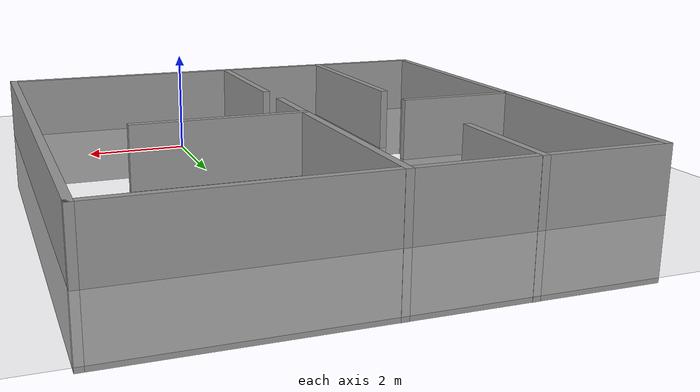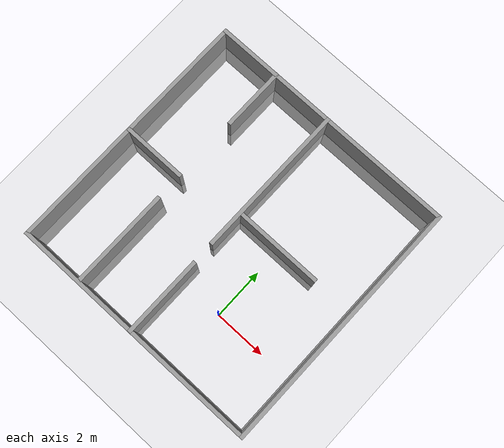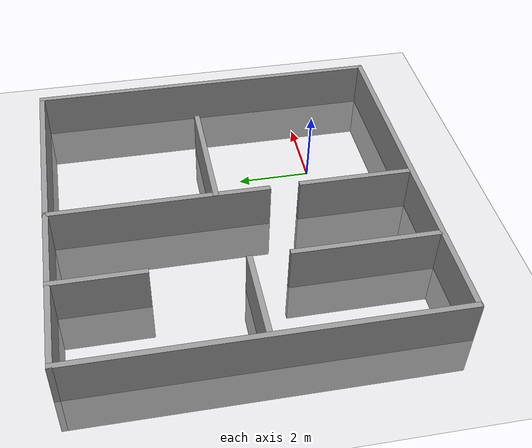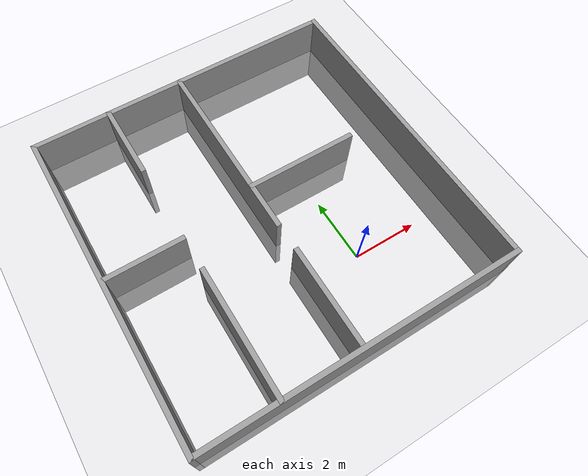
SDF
<?xml version="1.0" ?>
<sdf version="1.5">
  <world name="default">
    <!-- A global light source -->
    <include>
      <uri>model://sun</uri>
    </include>
    <!-- A ground plane -->
    <include>
      <uri>model://ground_plane</uri>
    </include>
    <!-- A unit box -->
    <model name='unit_box_0_0'>
      <pose frame=''>-1.5 2.5 0 0 -0 0</pose>

      <link name='Wall_1'>
      <collision name='Wall_1_Collision'>
        <geometry>
          <box>
            <size>10 0.15 2.5</size>
          </box>
        </geometry>
        <pose frame=''>0 0 0 0 -0 0</pose>
      </collision>
      <visual name='Wall_1_Visual'>
        <pose frame=''>0 0 0 0 -0 0</pose>
        <geometry>
          <box>
            <size>10 0.15 2.5</size>
          </box>
        </geometry>
        <material>
          <script>
            <uri>file://media/materials/scripts/gazebo.material</uri>
            <name>Gazebo/Grey</name>
          </script>
          <ambient>1 1 1 1</ambient>
        </material>
        <meta>
          <layer>0</layer>
        </meta>
      </visual>
      <pose frame=''>-0.119159 -4.92736 0 0 -0 0</pose>
    </link>
        <link name='Wall_11'>
      <collision name='Wall_11_Collision'>
        <geometry>
          <box>
            <size>2.5 0.15 2.5</size>
          </box>
        </geometry>
        <pose frame=''>0 0 0 0 -0 0</pose>
      </collision>
      <visual name='Wall_11_Visual'>
        <pose frame=''>0 0 0 0 -0 0</pose>
        <geometry>
          <box>
            <size>2.5 0.15 2.5</size>
          </box>
        </geometry>
        <material>
          <script>
            <uri>file://media/materials/scripts/gazebo.material</uri>
            <name>Gazebo/Grey</name>
          </script>
          <ambient>1 1 1 1</ambient>
        </material>
        <meta>
          <layer>0</layer>
        </meta>
      </visual>
      <pose frame=''>-2.64666 3.75236 0 0 -0 -1.5708</pose>
    </link>
    <link name='Wall_16'>
      <collision name='Wall_16_Collision'>
        <geometry>
          <box>
            <size>2.5 0.15 2.5</size>
          </box>
        </geometry>
        <pose frame=''>0 0 0 0 -0 0</pose>
      </collision>
      <visual name='Wall_16_Visual'>
        <pose frame=''>0 0 0 0 -0 0</pose>
        <geometry>
          <box>
            <size>2.5 0.15 2.5</size>
          </box>
        </geometry>
        <material>
          <script>
            <uri>file://media/materials/scripts/gazebo.material</uri>
            <name>Gazebo/Grey</name>
          </script>
          <ambient>1 1 1 1</ambient>
        </material>
        <meta>
          <layer>0</layer>
        </meta>
      </visual>
      <pose frame=''>-3.84066 0.028362 0 0 -0 0</pose>
    </link>
    <link name='Wall_18'>
      <collision name='Wall_18_Collision'>
        <geometry>
          <box>
            <size>4 0.15 2.5</size>
          </box>
        </geometry>
        <pose frame=''>0 0 0 0 -0 0</pose>
      </collision>
      <visual name='Wall_18_Visual'>
        <pose frame=''>0 0 0 0 -0 0</pose>
        <geometry>
          <box>
            <size>4 0.15 2.5</size>
          </box>
        </geometry>
        <material>
          <script>
            <uri>file://media/materials/scripts/gazebo.material</uri>
            <name>Gazebo/Grey</name>
          </script>
          <ambient>1 1 1 1</ambient>
        </material>
        <meta>
          <layer>0</layer>
        </meta>
      </visual>
      <pose frame=''>-2.63516 -2.99164 0 0 -0 1.5708</pose>
    </link>
    <link name='Wall_2'>
      <collision name='Wall_2_Collision'>
        <geometry>
          <box>
            <size>10 0.15 2.5</size>
          </box>
        </geometry>
        <pose frame=''>0 0 0 0 -0 0</pose>
      </collision>
      <visual name='Wall_2_Visual'>
        <pose frame=''>0 0 0 0 -0 0</pose>
        <geometry>
          <box>
            <size>10 0.15 2.5</size>
          </box>
        </geometry>
        <material>
          <script>
            <uri>file://media/materials/scripts/gazebo.material</uri>
            <name>Gazebo/Grey</name>
          </script>
          <ambient>1 1 1 1</ambient>
        </material>
        <meta>
          <layer>0</layer>
        </meta>
      </visual>
      <pose frame=''>4.80584 -0.002362 0 0 -0 1.5708</pose>
    </link>
    <link name='Wall_24'>
      <collision name='Wall_24_Collision'>
        <geometry>
          <box>
            <size>6 0.15 2.5</size>
          </box>
        </geometry>
        <pose frame=''>0 0 0 0 -0 0</pose>
      </collision>
      <visual name='Wall_24_Visual'>
        <pose frame=''>0 0 0 0 -0 0</pose>
        <geometry>
          <box>
            <size>6 0.15 2.5</size>
          </box>
        </geometry>
        <material>
          <script>
            <uri>file://media/materials/scripts/gazebo.material</uri>
            <name>Gazebo/Grey</name>
          </script>
          <ambient>1 1 1 1</ambient>
        </material>
        <meta>
          <layer>0</layer>
        </meta>
      </visual>
      <pose frame=''>-0.243157 2.00236 0 0 -0 -1.5708</pose>
    </link>
    <link name='Wall_28'>
      <collision name='Wall_28_Collision'>
        <geometry>
          <box>
            <size>3.2 0.15 2.5</size>
          </box>
        </geometry>
        <pose frame=''>0 0 0 0 -0 0</pose>
      </collision>
      <visual name='Wall_28_Visual'>
        <pose frame=''>0 0 0 0 -0 0</pose>
        <geometry>
          <box>
            <size>3.2 0.15 2.5</size>
          </box>
        </geometry>
        <material>
          <script>
            <uri>file://media/materials/scripts/gazebo.material</uri>
            <name>Gazebo/Grey</name>
          </script>
          <ambient>1 1 1 1</ambient>
        </material>
        <meta>
          <layer>0</layer>
        </meta>
      </visual>
      <pose frame=''>-0.220157 -3.39164 0 0 -0 1.5708</pose>
    </link>
    <link name='Wall_3'>
      <collision name='Wall_3_Collision'>
        <geometry>
          <box>
            <size>10 0.15 2.5</size>
          </box>
        </geometry>
        <pose frame=''>0 0 0 0 -0 0</pose>
      </collision>
      <visual name='Wall_3_Visual'>
        <pose frame=''>0 0 0 0 -0 0</pose>
        <geometry>
          <box>
            <size>10 0.15 2.5</size>
          </box>
        </geometry>
        <material>
          <script>
            <uri>file://media/materials/scripts/gazebo.material</uri>
            <name>Gazebo/Grey</name>
          </script>
          <ambient>1 1 1 1</ambient>
        </material>
        <meta>
          <layer>0</layer>
        </meta>
      </visual>
      <pose frame=''>-0.119159 4.92264 0 0 -0 3.14159</pose>
    </link>
    <link name='Wall_36'>
      <collision name='Wall_36_Collision'>
        <geometry>
          <box>
            <size>3.5 0.15 2.5</size>
          </box>
        </geometry>
        <pose frame=''>0 0 0 0 -0 0</pose>
      </collision>
      <visual name='Wall_36_Visual'>
        <pose frame=''>0 0 0 0 -0 0</pose>
        <geometry>
          <box>
            <size>3.5 0.15 2.5</size>
          </box>
        </geometry>
        <material>
          <script>
            <uri>file://media/materials/scripts/gazebo.material</uri>
            <name>Gazebo/Grey</name>
          </script>
          <ambient>1 1 1 1</ambient>
        </material>
        <meta>
          <layer>0</layer>
        </meta>
      </visual>
      <pose frame=''>1.44334 0.476862 0 0 -0 0</pose>
    </link>
    <link name='Wall_4'>
      <collision name='Wall_4_Collision'>
        <geometry>
          <box>
            <size>10 0.15 2.5</size>
          </box>
        </geometry>
        <pose frame=''>0 0 0 0 -0 0</pose>
      </collision>
      <visual name='Wall_4_Visual'>
        <pose frame=''>0 0 0 0 -0 0</pose>
        <geometry>
          <box>
            <size>10 0.15 2.5</size>
          </box>
        </geometry>
        <material>
          <script>
            <uri>file://media/materials/scripts/gazebo.material</uri>
            <name>Gazebo/Grey</name>
          </script>
          <ambient>1 1 1 1</ambient>
        </material>
        <meta>
          <layer>0</layer>
        </meta>
      </visual>
      <pose frame=''>-5.04416 -0.002362 0 0 -0 -1.5708</pose>
    </link>
    <static>1</static>
    </model>
  </world>
</sdf>
